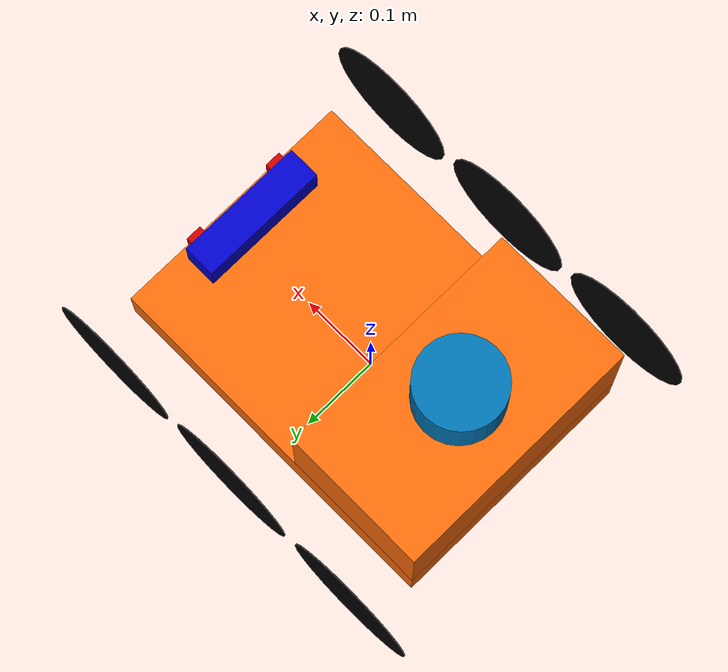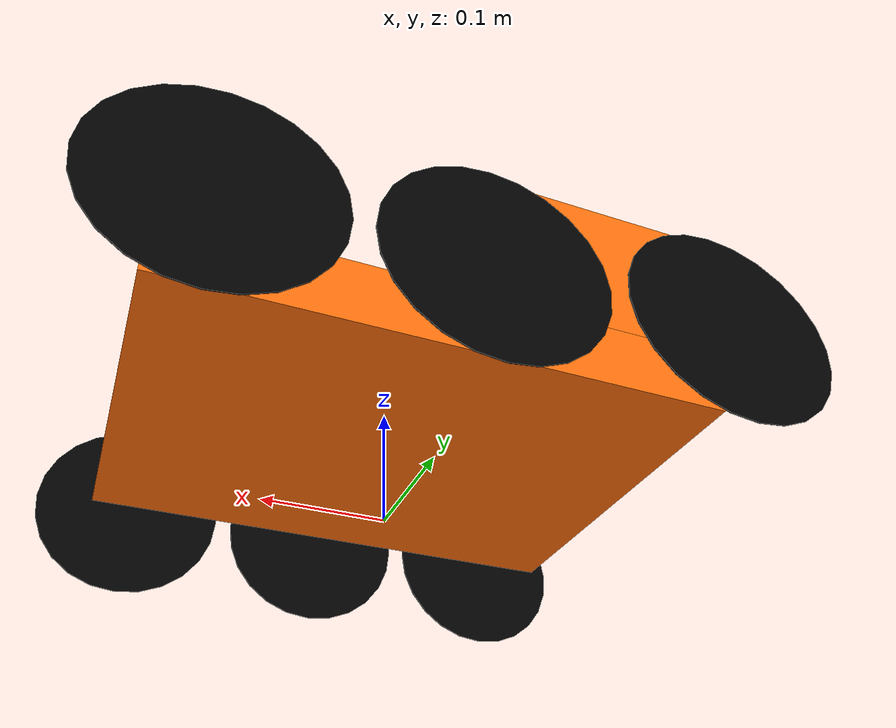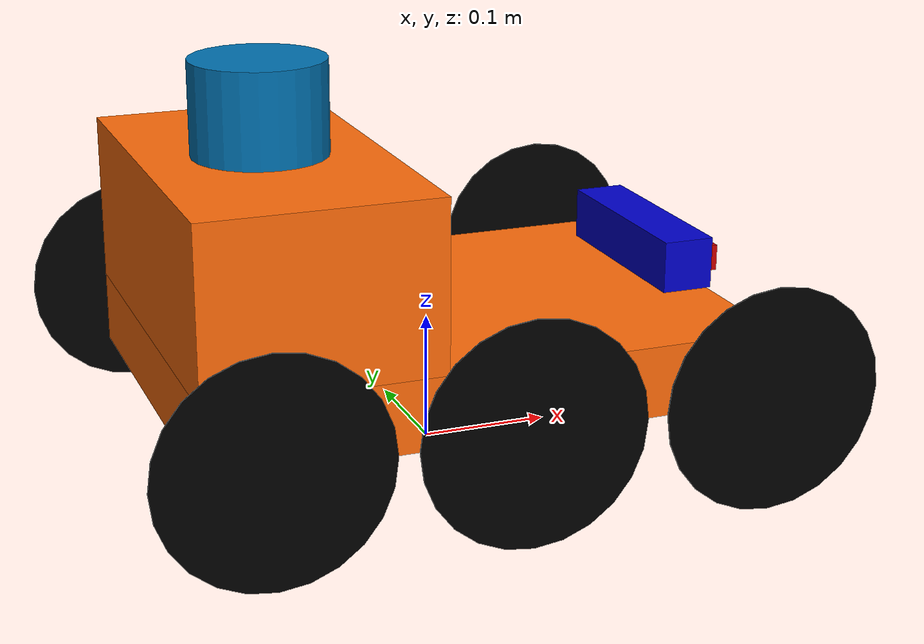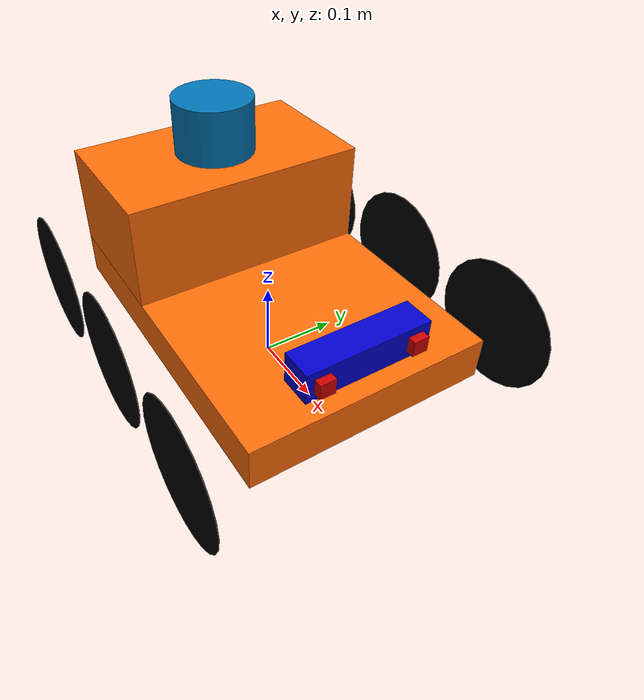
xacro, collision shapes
<?xml version="1.0"?>
<robot name="crrl_ugv" xmlns:xacro="http://www.ros.org/wiki/xacro">

  <!-- Properties -->
  <xacro:property name="PI" value="3.1415926535897931"/>
  <xacro:property name="chassis_height" value="0.055"/>
  <xacro:property name="chassis_length" value="0.44"/>
  <xacro:property name="chassis_width" value="0.31"/>
  <xacro:property name="chassis_mass" value="10"/>

  <xacro:property name="elec_box_height" value="0.13"/>
  <xacro:property name="elec_box_length" value="0.18"/>
  <xacro:property name="elec_box_width" value="0.31"/>
  <xacro:property name="elec_box_mass" value="2"/>

  <xacro:property name="wheel_width" value="0.1"/>
  <xacro:property name="wheel_radius" value="0.085"/>
  <xacro:property name="wheel_mass" value="0.1"/>

  <xacro:property name="front_wheel_pos" value="0.185"/>
  <xacro:property name="center_wheel_pos" value="0"/>
  <xacro:property name="rear_wheel_pos" value="-0.185"/>

  <xacro:property name="camera_size" value="0.02"/>
  <xacro:property name="camera_mass" value="0.1"/>
  <xacro:property name="camera_height" value="${wheel_radius*2-0.025}"/>
  <xacro:property name="camera_baseline" value="0.12"/>

  <xacro:property name="stcam_width" value="${camera_baseline+(camera_size)*2}"/>
  <xacro:property name="stcam_height" value="${camera_size*2}"/>
  <xacro:property name="stcam_depth" value="${camera_size*2}"/>

  <xacro:property name="wheel_kp" value="1.0" />
  <xacro:property name="wheel_kd" value="1.0" />
  <xacro:property name="wheel_mu1" value="1" />
  <xacro:property name="wheel_mu2" value="0.5" />
  <xacro:property name="wheel_slip1" value="0.5" />
  <xacro:property name="wheel_slip2" value="0.1" />
  <xacro:property name="wheel_gap" value="0.01" />

  <xacro:property name="imu_xoffset" value="0" />
  <xacro:property name="imu_yoffset" value="0" />
  <xacro:property name="imu_zoffset" value="0" />

  <xacro:arg name="gpu" default="false"/>
  <xacro:property name="gpu" value="$(arg gpu)" />

  <!-- File includes -->
  <xacro:include filename="$(find crrl_ugv_desc)/urdf/crrl_ugv.gazebo" />
  <xacro:include filename="$(find crrl_ugv_desc)/urdf/materials.xacro" />
  <xacro:include filename="$(find crrl_ugv_desc)/urdf/macros.xacro" />
  <xacro:include filename="$(find velodyne_description)/urdf/VLP-16.urdf.xacro"/>

  <!-- Robot Definition -->
  <link name="base_footprint"/>

  <joint name="base_joint" type="fixed">
    <parent link="base_footprint"/>
    <child link="base_link"/>
  </joint>

  <link name='base_link'>
    <collision>
      <origin xyz="0 0 ${wheel_radius}" rpy="0 0 0"/>
      <geometry>
	<box size="${chassis_length} ${chassis_width} ${chassis_height}"/>
      </geometry>
    </collision>
    <visual>
      <origin xyz="0 0 ${wheel_radius}" rpy="0 0 0"/>
      <geometry>
	<box size="${chassis_length} ${chassis_width} ${chassis_height}"/>
      </geometry>
      <material name="orange"/>
    </visual>
    <inertial>
      <origin xyz="0 0 ${wheel_radius}" rpy="0 0 0"/>
      <mass value="${chassis_mass}"/>
      <xacro:box_inertia m="${chassis_mass}" x="${chassis_length}" y="${chassis_width}" z="${chassis_height}"/>
    </inertial>
  </link>

  <link name='elecBox'>
    <collision>
      <origin xyz="${elec_box_length/2-chassis_length/2} 0 ${wheel_radius+chassis_height/2+elec_box_height/2}" rpy="0 0 0"/>
      <geometry>
	<box size="${elec_box_length} ${elec_box_width} ${elec_box_height}"/>
      </geometry>
    </collision>
    <visual>
      <origin xyz="${elec_box_length/2-chassis_length/2} 0 ${wheel_radius+chassis_height/2+elec_box_height/2}" rpy="0 0 0"/>
       <geometry>
	<box size="${elec_box_length} ${elec_box_width} ${elec_box_height}"/>
      </geometry>
      <material name="orange"/>
    </visual>
    <inertial>
      <origin xyz="${elec_box_length/2-chassis_length/2} 0 ${wheel_radius+chassis_height/2+elec_box_height/2}" rpy="0 0 0"/>
      <mass value="${elec_box_mass}"/>
      <xacro:box_inertia m="${elec_box_mass}" x="${elec_box_length}" y="${elec_box_width}" z="${elec_box_height}"/>
    </inertial>
  </link>

  <joint name="elec_base_link" type="fixed">
    <parent link="base_link"/>
    <child link="elecBox"/>
  </joint>

  <!-- IMU attachment -->
  <link name="imu_link">
    <inertial>
      <mass value="0.001"/>
      <origin rpy="0 0 0" xyz="0 0 0"/>
      <inertia ixx="0.0001" ixy="0" ixz="0" iyy="0.000001" iyz="0" izz="0.0001"/>
    </inertial>
    <visual>
      <origin rpy="0 0 0" xyz="0 0 0"/>
      <geometry>
	<box size="0.001 0.001 0.001"/>
      </geometry>
    </visual>
    <collision>
      <origin rpy="0 0 0" xyz="0 0 0"/>
      <geometry>
	<box size=".001 .001 .001"/>
      </geometry>
    </collision>
  </link>

  <joint name="imu_joint" type="fixed">
    <axis xyz="1 0 0"/>
    <origin xyz="${elec_box_length/2-chassis_length/2+imu_xoffset} ${imu_yoffset} ${wheel_radius+chassis_height/2+elec_box_height/2+imu_zoffset}"/>
    <parent link="elecBox"/>
    <child link="imu_link"/>
  </joint>

  <!-- VLP-16 to electrical box -->
  <xacro:VLP-16 parent="elecBox" name="velodyne" topic="/lidar/velodyne_points" hz="10" samples="440" gpu="${gpu}">
    <origin xyz="${elec_box_length/2-chassis_length/2} 0 ${wheel_radius+chassis_height/2+elec_box_height}" rpy="0 0 0" />
  </xacro:VLP-16>

  <!-- Wheels -->
  <xacro:wheel lr="leftFwd" tY="1" pos="${front_wheel_pos}" gap="${wheel_gap}"/>
  <xacro:wheel lr="leftCt" tY="1" pos="${center_wheel_pos}" gap="${wheel_gap}"/>
  <xacro:wheel lr="leftBwd" tY="1" pos="${rear_wheel_pos}" gap="${wheel_gap}"/>

  <xacro:wheel lr="rightFwd" tY="-1" pos="${front_wheel_pos}" gap="${wheel_gap*-1}"/>
  <xacro:wheel lr="rightCt" tY="-1" pos="${center_wheel_pos}" gap="${wheel_gap*-1}"/>
  <xacro:wheel lr="rightBwd" tY="-1" pos="${rear_wheel_pos}" gap="${wheel_gap*-1}"/>

  <!-- Camera(s) -->
  <joint name="camera_joint" type="fixed">
    <axis xyz="0 1 0" />
    <origin xyz="${front_wheel_pos} 0 ${camera_height}" rpy="0 0 0"/>
    <parent link="base_link"/>
    <child link="camera_link"/>
  </joint>

  <link name="camera_link">
    <collision>
      <origin xyz="0 0 0" rpy="0 0 0"/>
      <geometry>
	<box size="${stcam_height} ${stcam_width} ${stcam_depth}"/>
      </geometry>
    </collision>
    <visual>
      <origin xyz="0 0 0" rpy="0 0 0"/>
      <geometry>
	<box size="${stcam_height} ${stcam_width} ${stcam_depth}"/>
      </geometry>
      <material name="blue"/>
    </visual>
  </link>

  <joint name="camera_joint_left" type="fixed">
    <axis xyz="0 1 0" />
    <origin xyz="${stcam_depth/2} ${camera_baseline*0.5} 0" rpy="0 0 0"/>
    <parent link="camera_link"/>
    <child link="camera_link_left"/>
  </joint>

  <joint name="camera_joint_right" type="fixed">
    <axis xyz="0 1 0" />
    <origin xyz="${stcam_depth/2} ${-camera_baseline*0.5} 0" rpy="0 0 0"/>
    <parent link="camera_link"/>
    <child link="camera_link_right"/>
  </joint>

  <!-- Left Camera -->
  <link name="camera_link_left">
    <collision>
      <origin xyz="0 0 0" rpy="0 0 0"/>
      <geometry>
	<box size="${camera_size} ${camera_size} ${camera_size}"/>
      </geometry>
    </collision>

    <visual>
      <origin xyz="0 0 0" rpy="0 0 0"/>
      <geometry>
	<box size="${camera_size} ${camera_size} ${camera_size}"/>
      </geometry>
      <material name="red"/>
    </visual>

    <inertial>
      <mass value="1e-5" />
      <origin xyz="0 0 0" rpy="0 0 0"/>
      <inertia ixx="1e-6" ixy="0" ixz="0" iyy="1e-6" iyz="0" izz="1e-6" />
    </inertial>
  </link>

  <!-- Right Camera -->
  <link name="camera_link_right">
    <collision>
      <origin xyz="0 0 0" rpy="0 0 0"/>
      <geometry>
	<box size="${camera_size} ${camera_size} ${camera_size}"/>
      </geometry>
    </collision>

    <visual>
      <origin xyz="0 0 0" rpy="0 0 0"/>
      <geometry>
	<box size="${camera_size} ${camera_size} ${camera_size}"/>
      </geometry>
      <material name="red"/>
    </visual>

    <inertial>
      <mass value="1e-5" />
      <origin xyz="0 0 0" rpy="0 0 0"/>
      <inertia ixx="1e-6" ixy="0" ixz="0" iyy="1e-6" iyz="0" izz="1e-6" />
    </inertial>
  </link>

</robot>

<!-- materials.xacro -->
<robot name="crrl_ugv" xmlns:xacro="http://www.ros.org/wiki/xacro">
    <!-- Put here the robot description -->
  <material name="black">
    <color rgba="0.0 0.0 0.0 1.0"/>
  </material>

  <material name="blue">
    <color rgba="0.0 0.0 0.8 1.0"/>
  </material>

  <material name="green">
    <color rgba="0.0 0.8 0.0 1.0"/>
  </material>

  <material name="grey">
    <color rgba="0.2 0.2 0.2 1.0"/>
  </material>

  <material name="orange">
    <color rgba="${255/255} ${108/255} ${10/255} 1.0"/>
  </material>

  <material name="brown">
    <color rgba="${222/255} ${207/255} ${195/255} 1.0"/>
  </material>

  <material name="red">
    <color rgba="0.8 0.0 0.0 1.0"/>
  </material>

  <material name="white">
    <color rgba="1.0 1.0 1.0 1.0"/>
  </material>
</robot>

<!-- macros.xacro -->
<robot name="crrl_ugv" xmlns:xacro="http://www.ros.org/wiki/xacro">

  <xacro:macro name="cylinder_inertia" params="m r h">
    <inertia ixx="${m*(3*r*r+h*h)/12}" ixy = "0" ixz = "0"
	     iyy="${m*(3*r*r+h*h)/12}" iyz = "0"
             izz="${m*r*r/2}"
	     />
  </xacro:macro>

  <xacro:macro name="box_inertia" params="m x y z">
    <inertia  ixx="${m*(y*y+z*z)/12}" ixy = "0" ixz = "0"
	      iyy="${m*(x*x+z*z)/12}" iyz = "0"
	      izz="${m*(x*x+z*z)/12}"
	      />
  </xacro:macro>

  <xacro:macro name="sphere_inertia" params="m r">
    <inertia  ixx="${2*m*r*r/5}" ixy = "0" ixz = "0"
	      iyy="${2*m*r*r/5}" iyz = "0"
	      izz="${2*m*r*r/5}"
	      />
  </xacro:macro>

  <!-- NOTE: Wheel collision width is reduced to improve turning. Visually accurate -->
  <xacro:macro name="wheel" params="lr tY pos gap">

    <link name="${lr}_wheel">
      <collision>
	<origin xyz="0 0 0" rpy="0 ${PI/2} ${PI/2}" />
	<geometry>
	  <cylinder length="${wheel_width*0.01}" radius="${wheel_radius}"/>
	</geometry>
      </collision>

      <surface>
        <friction>
          <fdir1>1 0 0</fdir1>
          <kp>${wheel_kp}</kp> <!-- kp and kd for rubber -->
          <kd>${wheel_kd}</kd>
          <mu>${wheel_mu1}</mu>
          <mu2>${wheel_mu2}</mu2>
          <slip1>${wheel_slip1}</slip1>
          <slip2>${wheel_slip2}</slip2>
        </friction>
      </surface>

      <visual>
	<origin xyz="0 0 0" rpy="0 ${PI/2} ${PI/2}" />
	<geometry>
	  <cylinder length="${wheel_width}" radius="${wheel_radius}"/>
	</geometry>
	<material name="black"/>
      </visual>

      <inertial>
	<origin xyz="0 0 0" rpy="0 ${PI/2} ${PI/2}" />
	<mass value="${wheel_mass}"/>
	<xacro:cylinder_inertia m="${wheel_mass}" r="${wheel_radius}" h="${wheel_width}"/>
      </inertial>
    </link>

    <gazebo reference="${lr}_wheel">
      <material>Gazebo/Black</material>
    </gazebo>

    <joint name="${lr}_wheel_hinge" type="continuous">
      <parent link="base_link"/>
      <child link="${lr}_wheel"/>
      <origin xyz="${pos} ${tY*wheel_width/2+tY*chassis_width/2+gap} ${wheel_radius}" rpy="0 0 0" />
      <axis xyz="0 1 0" rpy="0 0 0" />
      <limit effort="100" velocity="100"/>
      <joint_properties damping="1.0" friction="1.0"/>
    </joint>

    <transmission name="${lr}_trans">
      <type>transmission_interface/SimpleTransmission</type>
      <joint name="${lr}_wheel_hinge">
	<hardwareInterface>hardware_interface/EffortJointInterface</hardwareInterface>
      </joint>
      <actuator name="${lr}Motor">
	<hardwareInterface>EffortJointInterface</hardwareInterface>
	<mechanicalReduction>10</mechanicalReduction>
      </actuator>
    </transmission>
  </xacro:macro>
</robot>

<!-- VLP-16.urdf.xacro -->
<robot xmlns:xacro="http://www.ros.org/wiki/xacro" name="VLP-16">
  <xacro:property name="M_PI" value="3.1415926535897931" />
  <xacro:macro name="VLP-16" params="*origin is_sim:=true parent:=base_link name:=velodyne tf_prefix:='' topic:=/velodyne_points organize_cloud:=false hz:=10 lasers:=16 samples:=1875 collision_range:=0.3 min_range:=0.0 max_range:=100.0 noise:=0.008 min_angle:=-${M_PI} max_angle:=${M_PI} gpu:=false">

    <joint name="${name}_base_mount_joint" type="fixed">
      <xacro:insert_block name="origin" />
      <parent link="${parent}"/>
      <child link="${name}_base_link"/>
    </joint>

    <link name="${name}_base_link">
      <inertial>
        <mass value="0.83"/>
        <origin xyz="0 0 0.03585"/>
        <inertia ixx="${(0.83 * (3.0*0.0516*0.0516 + 0.0717*0.0717)) / 12.0}" ixy="0" ixz="0"
          iyy="${(0.83 * (3.0*0.0516*0.0516 + 0.0717*0.0717)) / 12.0}" iyz="0"
          izz="${0.5 * 0.83 * (0.0516*0.0516)}"/>
      </inertial>
      <visual>
        <geometry>
          <mesh filename="package://velodyne_description/meshes/VLP16_base_1.dae" />
        </geometry>
      </visual>
      <visual>
        <geometry>
          <mesh filename="package://velodyne_description/meshes/VLP16_base_2.dae" />
        </geometry>
      </visual>
      <collision>
        <origin rpy="0 0 0" xyz="0 0 0.03585"/>
        <geometry>
          <cylinder radius="0.0516" length="0.0717"/>
        </geometry>
      </collision>
    </link>

    <joint name="${name}_base_scan_joint" type="fixed" >
      <origin xyz="0 0 0.0377" rpy="0 0 0" />
      <parent link="${name}_base_link" />
      <child link="${name}"/>
    </joint>

    <link name="${name}">
      <inertial>
        <mass value="0.01"/>
        <origin xyz="0 0 0"/>
        <inertia ixx="1e-7" ixy="0" ixz="0" iyy="1e-7" iyz="0" izz="1e-7"/>
      </inertial>
      <visual>
        <origin xyz="0 0 -0.0377" />
        <geometry>
          <mesh filename="package://velodyne_description/meshes/VLP16_scan.dae" />
        </geometry>
      </visual>
      <collision>
        <geometry>
          <sphere radius="0"/>
        </geometry>
      </collision>
    </link>

    <!-- Gazebo requires the velodyne_gazebo_plugins package -->
    <xacro:if value="${is_sim}">
        <gazebo reference="${name}">
            <xacro:if value="${gpu}">
                <sensor type="gpu_ray" name="${name}-VLP16">
                <pose>0 0 0 0 0 0</pose>
                <visualize>false</visualize>
                <update_rate>${hz}</update_rate>
                <ray>
                    <scan>
                    <horizontal>
                        <samples>${samples}</samples>
                        <resolution>1</resolution>
                        <min_angle>${min_angle}</min_angle>
                        <max_angle>${max_angle}</max_angle>
                    </horizontal>
                    <vertical>
                        <samples>${lasers}</samples>
                        <resolution>1</resolution>
                        <min_angle>-${15.0*M_PI/180.0}</min_angle>
                        <max_angle> ${15.0*M_PI/180.0}</max_angle>
                    </vertical>
                    </scan>
                    <range>
                    <min>${collision_range}</min>
                    <max>${max_range+1}</max>
                    <resolution>0.001</resolution>
                    </range>
                    <noise>
                    <type>gaussian</type>
                    <mean>0.0</mean>
                    <stddev>0.0</stddev>
                    </noise>
                </ray>
                <plugin name="gazebo_ros_laser_controller" filename="libgazebo_ros_velodyne_laser.so">
                    <ros>
                    <namespace>/${name}</namespace>
                    <remapping>~/out:=${topic}</remapping>
                    </ros>
                    <tf_prefix>${tf_prefix}</tf_prefix>
                    <frame_name>${name}</frame_name>
                    <organize_cloud>${organize_cloud}</organize_cloud>
                    <min_range>${min_range}</min_range>
                    <max_range>${max_range}</max_range>
                    <gaussian_noise>${noise}</gaussian_noise>
                </plugin>
                </sensor>
            </xacro:if>
            <xacro:unless value="${gpu}">
                <sensor type="ray" name="${name}-VLP16">
                <pose>0 0 0 0 0 0</pose>
                <visualize>false</visualize>
                <update_rate>${hz}</update_rate>
                <ray>
                    <scan>
                    <horizontal>
                        <samples>${samples}</samples>
                        <resolution>1</resolution>
                        <min_angle>${min_angle}</min_angle>
                        <max_angle>${max_angle}</max_angle>
                    </horizontal>
                    <vertical>
                        <samples>${lasers}</samples>
                        <resolution>1</resolution>
                        <min_angle>-${15.0*M_PI/180.0}</min_angle>
                        <max_angle> ${15.0*M_PI/180.0}</max_angle>
                    </vertical>
                    </scan>
                    <range>
                    <min>${collision_range}</min>
                    <max>${max_range+1}</max>
                    <resolution>0.001</resolution>
                    </range>
                    <noise>
                    <type>gaussian</type>
                    <mean>0.0</mean>
                    <stddev>0.0</stddev>
                    </noise>
                </ray>
                <plugin name="gazebo_ros_laser_controller" filename="libgazebo_ros_velodyne_laser.so">
                    <ros>
                    <namespace>/${name}</namespace>
                    <remapping>~/out:=${topic}</remapping>
                    </ros>
                    <tf_prefix>${tf_prefix}</tf_prefix>
                    <frame_name>${name}</frame_name>
                    <organize_cloud>${organize_cloud}</organize_cloud>
                    <min_range>${min_range}</min_range>
                    <max_range>${max_range}</max_range>
                    <gaussian_noise>${noise}</gaussian_noise>
                </plugin>
                </sensor>
            </xacro:unless>
        </gazebo>
    </xacro:if>

  </xacro:macro>
</robot>
